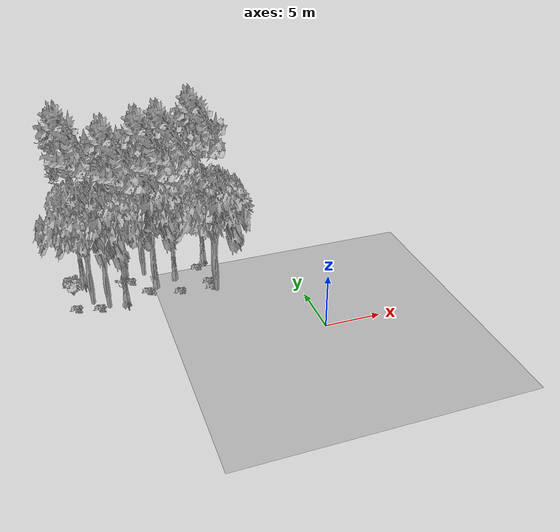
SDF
<sdf version="1.7">
 <world name="default">
  <model name="ground_plane">
   <static>1</static>
   <link name="link">
    <collision name="collision">
     <pose>-50 0 0 0 -0 0</pose>
     <geometry><plane><normal>0 0 1</normal><size>80 80</size></plane></geometry>
     <surface><contact><ode><min_depth>0.01</min_depth><max_vel>0</max_vel></ode></contact></surface>
    </collision>
    <visual name="grass">
     <cast_shadows>0</cast_shadows>
     <geometry>
      <mesh>
       <scale>0.46714285714285714 0.46714285714285714 0.1</scale>
       <uri>file://grass_plane/meshes/grass_plane.dae</uri>
      </mesh>
     </geometry>
    </visual>
   </link>
  </model>
  <model name="Tree 104">
   <static>1</static>
   <pose>-18.28148329916488 9.928583398055991 0 1.57079 -0 0</pose>
   <link name="link">
    <collision name="collision">
     <geometry><mesh><scale>3.5 5 3.5</scale><uri>model://tree_2/meshes/tree_2.obj</uri></mesh></geometry>
    </collision>
    <visual name="visual">
     <geometry><mesh><scale>3.5 5 3.5</scale><uri>model://tree_2/meshes/tree_2.obj</uri></mesh></geometry>
    </visual>
   </link>
  </model>
  <model name="Tree 109">
   <static>1</static>
   <pose>-18.649709073456044 13.559853522373373 0 1.57079 -0 0</pose>
   <link name="link">
    <collision name="collision">
     <geometry><mesh><scale>3.5 5 3.5</scale><uri>model://tree_9/meshes/tree_9.obj</uri></mesh></geometry>
    </collision>
    <visual name="visual">
     <geometry><mesh><scale>3.5 5 3.5</scale><uri>model://tree_9/meshes/tree_9.obj</uri></mesh></geometry>
    </visual>
   </link>
  </model>
  <model name="Tree 124">
   <static>1</static>
   <pose>-10.505662228119025 11.254345766389577 0 1.57079 -0 0</pose>
   <link name="link">
    <collision name="collision">
     <geometry><mesh><scale>3.5 5 3.5</scale><uri>model://tree_9/meshes/tree_9.obj</uri></mesh></geometry>
    </collision>
    <visual name="visual">
     <geometry><mesh><scale>3.5 5 3.5</scale><uri>model://tree_9/meshes/tree_9.obj</uri></mesh></geometry>
    </visual>
   </link>
  </model>
  <model name="Tree 152">
   <static>1</static>
   <pose>-17.011279528519268 8.886947253191778 0 1.57079 -0 0</pose>
   <link name="link">
    <collision name="collision">
     <geometry><mesh><scale>3.5 5 3.5</scale><uri>model://tree_2/meshes/tree_2.obj</uri></mesh></geometry>
    </collision>
    <visual name="visual">
     <geometry><mesh><scale>3.5 5 3.5</scale><uri>model://tree_2/meshes/tree_2.obj</uri></mesh></geometry>
    </visual>
   </link>
  </model>
  <model name="Tree 172">
   <static>1</static>
   <pose>-7.150016903357983 13.815498677808307 0 1.57079 -0 0</pose>
   <link name="link">
    <collision name="collision">
     <geometry><mesh><scale>3.5 5 3.5</scale><uri>model://tree_9/meshes/tree_9.obj</uri></mesh></geometry>
    </collision>
    <visual name="visual">
     <geometry><mesh><scale>3.5 5 3.5</scale><uri>model://tree_9/meshes/tree_9.obj</uri></mesh></geometry>
    </visual>
   </link>
  </model>
  <model name="Tree 212">
   <static>1</static>
   <pose>-14.782149635257152 13.185105156233561 0 1.57079 -0 0</pose>
   <link name="link">
    <collision name="collision">
     <geometry><mesh><scale>3.5 5 3.5</scale><uri>model://tree_2/meshes/tree_2.obj</uri></mesh></geometry>
    </collision>
    <visual name="visual">
     <geometry><mesh><scale>3.5 5 3.5</scale><uri>model://tree_2/meshes/tree_2.obj</uri></mesh></geometry>
    </visual>
   </link>
  </model>
  <model name="Tree 305">
   <static>1</static>
   <pose>-7.236299312251159 9.313209007664554 0 1.57079 -0 0</pose>
   <link name="link">
    <collision name="collision">
     <geometry><mesh><scale>3.5 5 3.5</scale><uri>model://tree_2/meshes/tree_2.obj</uri></mesh></geometry>
    </collision>
    <visual name="visual">
     <geometry><mesh><scale>3.5 5 3.5</scale><uri>model://tree_2/meshes/tree_2.obj</uri></mesh></geometry>
    </visual>
   </link>
  </model>
  <model name="Tree 443">
   <static>1</static>
   <pose>-15.361605523305627 9.29067509267717 0 1.57079 -0 0</pose>
   <link name="link">
    <collision name="collision">
     <geometry><mesh><scale>3.5 5 3.5</scale><uri>model://tree_9/meshes/tree_9.obj</uri></mesh></geometry>
    </collision>
    <visual name="visual">
     <geometry><mesh><scale>3.5 5 3.5</scale><uri>model://tree_9/meshes/tree_9.obj</uri></mesh></geometry>
    </visual>
   </link>
  </model>
  <model name="Tree 460">
   <static>1</static>
   <pose>-12.542575840458682 10.496789172410324 0 1.57079 -0 0</pose>
   <link name="link">
    <collision name="collision">
     <geometry><mesh><scale>3.5 5 3.5</scale><uri>model://tree_2/meshes/tree_2.obj</uri></mesh></geometry>
    </collision>
    <visual name="visual">
     <geometry><mesh><scale>3.5 5 3.5</scale><uri>model://tree_2/meshes/tree_2.obj</uri></mesh></geometry>
    </visual>
   </link>
  </model>
  <model name="Tree 558">
   <static>1</static>
   <pose>-7.341074036273529 8.386168983769657 0 1.57079 -0 0</pose>
   <link name="link">
    <collision name="collision">
     <geometry><mesh><scale>3.5 5 3.5</scale><uri>model://tree_2/meshes/tree_2.obj</uri></mesh></geometry>
    </collision>
    <visual name="visual">
     <geometry><mesh><scale>3.5 5 3.5</scale><uri>model://tree_2/meshes/tree_2.obj</uri></mesh></geometry>
    </visual>
   </link>
  </model>
  <model name="Tree 611">
   <static>1</static>
   <pose>-13.156819439751942 13.117392661158064 0 1.57079 -0 0</pose>
   <link name="link">
    <collision name="collision">
     <geometry><mesh><scale>3.5 5 3.5</scale><uri>model://tree_2/meshes/tree_2.obj</uri></mesh></geometry>
    </collision>
    <visual name="visual">
     <geometry><mesh><scale>3.5 5 3.5</scale><uri>model://tree_2/meshes/tree_2.obj</uri></mesh></geometry>
    </visual>
   </link>
  </model>
  <model name="Tree 622">
   <static>1</static>
   <pose>-12.416378181640315 10.475678446450871 0 1.57079 -0 0</pose>
   <link name="link">
    <collision name="collision">
     <geometry><mesh><scale>3.5 5 3.5</scale><uri>model://tree_9/meshes/tree_9.obj</uri></mesh></geometry>
    </collision>
    <visual name="visual">
     <geometry><mesh><scale>3.5 5 3.5</scale><uri>model://tree_9/meshes/tree_9.obj</uri></mesh></geometry>
    </visual>
   </link>
  </model>
  <model name="Bush 35">
   <static>1</static>
   <pose>-14.528772762804827 12.086241082716853 0 1.57079 -0 0</pose>
   <link name="link">
    <collision name="collision">
     <geometry><mesh><scale>2 2 2</scale><uri>model://bush_2/meshes/bush_2.obj</uri></mesh></geometry>
     <surface><contact><collide_without_contact>false</collide_without_contact></contact></surface>
    </collision>
    <visual name="visual">
     <geometry><mesh><scale>2 2 2</scale><uri>model://bush_2/meshes/bush_2.obj</uri></mesh></geometry>
    </visual>
   </link>
  </model>
  <model name="Bush 42">
   <static>1</static>
   <pose>-13.283077227513612 10.023845364732232 0 1.57079 -0 0</pose>
   <link name="link">
    <collision name="collision">
     <geometry><mesh><scale>2 2 2</scale><uri>model://bush_2/meshes/bush_2.obj</uri></mesh></geometry>
     <surface><contact><collide_without_contact>false</collide_without_contact></contact></surface>
    </collision>
    <visual name="visual">
     <geometry><mesh><scale>2 2 2</scale><uri>model://bush_2/meshes/bush_2.obj</uri></mesh></geometry>
    </visual>
   </link>
  </model>
  <model name="Bush 77">
   <static>1</static>
   <pose>-8.139859164791197 12.494162490909815 0 1.57079 -0 0</pose>
   <link name="link">
    <collision name="collision">
     <geometry><mesh><scale>2 2 2</scale><uri>model://bush_2/meshes/bush_2.obj</uri></mesh></geometry>
     <surface><contact><collide_without_contact>false</collide_without_contact></contact></surface>
    </collision>
    <visual name="visual">
     <geometry><mesh><scale>2 2 2</scale><uri>model://bush_2/meshes/bush_2.obj</uri></mesh></geometry>
    </visual>
   </link>
  </model>
  <model name="Bush 128">
   <static>1</static>
   <pose>-19.73194576827871 11.80645875165662 0 1.57079 -0 0</pose>
   <link name="link">
    <collision name="collision">
     <geometry><mesh><scale>2 2 2</scale><uri>model://bush_1/meshes/bush_1.obj</uri></mesh></geometry>
     <surface><contact><collide_without_contact>false</collide_without_contact></contact></surface>
    </collision>
    <visual name="visual">
     <geometry><mesh><scale>2 2 2</scale><uri>model://bush_1/meshes/bush_1.obj</uri></mesh></geometry>
    </visual>
   </link>
  </model>
  <model name="Bush 244">
   <static>1</static>
   <pose>-7.617161579507016 8.85914063127202 0 1.57079 -0 0</pose>
   <link name="link">
    <collision name="collision">
     <geometry><mesh><scale>2 2 2</scale><uri>model://bush_2/meshes/bush_2.obj</uri></mesh></geometry>
     <surface><contact><collide_without_contact>false</collide_without_contact></contact></surface>
    </collision>
    <visual name="visual">
     <geometry><mesh><scale>2 2 2</scale><uri>model://bush_2/meshes/bush_2.obj</uri></mesh></geometry>
    </visual>
   </link>
  </model>
  <model name="Bush 247">
   <static>1</static>
   <pose>-10.490090974935853 9.087283915860091 0 1.57079 -0 0</pose>
   <link name="link">
    <collision name="collision">
     <geometry><mesh><scale>2 2 2</scale><uri>model://bush_2/meshes/bush_2.obj</uri></mesh></geometry>
     <surface><contact><collide_without_contact>false</collide_without_contact></contact></surface>
    </collision>
    <visual name="visual">
     <geometry><mesh><scale>2 2 2</scale><uri>model://bush_2/meshes/bush_2.obj</uri></mesh></geometry>
    </visual>
   </link>
  </model>
  <model name="Bush 428">
   <static>1</static>
   <pose>-19.812426888236452 12.685663272722579 0 1.57079 -0 0</pose>
   <link name="link">
    <collision name="collision">
     <geometry><mesh><scale>2 2 2</scale><uri>model://bush_5/meshes/bush_5.obj</uri></mesh></geometry>
     <surface><contact><collide_without_contact>false</collide_without_contact></contact></surface>
    </collision>
    <visual name="visual">
     <geometry><mesh><scale>2 2 2</scale><uri>model://bush_5/meshes/bush_5.obj</uri></mesh></geometry>
    </visual>
   </link>
  </model>
  <model name="Bush 467">
   <static>1</static>
   <pose>-7.641109250384108 9.840152276020149 0 1.57079 -0 0</pose>
   <link name="link">
    <collision name="collision">
     <geometry><mesh><scale>2 2 2</scale><uri>model://bush_2/meshes/bush_2.obj</uri></mesh></geometry>
     <surface><contact><collide_without_contact>false</collide_without_contact></contact></surface>
    </collision>
    <visual name="visual">
     <geometry><mesh><scale>2 2 2</scale><uri>model://bush_2/meshes/bush_2.obj</uri></mesh></geometry>
    </visual>
   </link>
  </model>
  <model name="Bush 510">
   <static>1</static>
   <pose>-19.735971233101793 9.325797601431418 0 1.57079 -0 0</pose>
   <link name="link">
    <collision name="collision">
     <geometry><mesh><scale>2 2 2</scale><uri>model://bush_2/meshes/bush_2.obj</uri></mesh></geometry>
     <surface><contact><collide_without_contact>false</collide_without_contact></contact></surface>
    </collision>
    <visual name="visual">
     <geometry><mesh><scale>2 2 2</scale><uri>model://bush_2/meshes/bush_2.obj</uri></mesh></geometry>
    </visual>
   </link>
  </model>
  <model name="Bush 595">
   <static>1</static>
   <pose>-17.76476088055198 8.772606987070581 0 1.57079 -0 0</pose>
   <link name="link">
    <collision name="collision">
     <geometry><mesh><scale>2 2 2</scale><uri>model://bush_2/meshes/bush_2.obj</uri></mesh></geometry>
     <surface><contact><collide_without_contact>false</collide_without_contact></contact></surface>
    </collision>
    <visual name="visual">
     <geometry><mesh><scale>2 2 2</scale><uri>model://bush_2/meshes/bush_2.obj</uri></mesh></geometry>
    </visual>
   </link>
  </model>
  <model name="Bush 605">
   <static>1</static>
   <pose>-15.227277352952207 11.48346508262484 0 1.57079 -0 0</pose>
   <link name="link">
    <collision name="collision">
     <geometry><mesh><scale>2 2 2</scale><uri>model://bush_4/meshes/bush_4.obj</uri></mesh></geometry>
     <surface><contact><collide_without_contact>false</collide_without_contact></contact></surface>
    </collision>
    <visual name="visual">
     <geometry><mesh><scale>2 2 2</scale><uri>model://bush_4/meshes/bush_4.obj</uri></mesh></geometry>
    </visual>
   </link>
  </model>
 </world>
</sdf>
